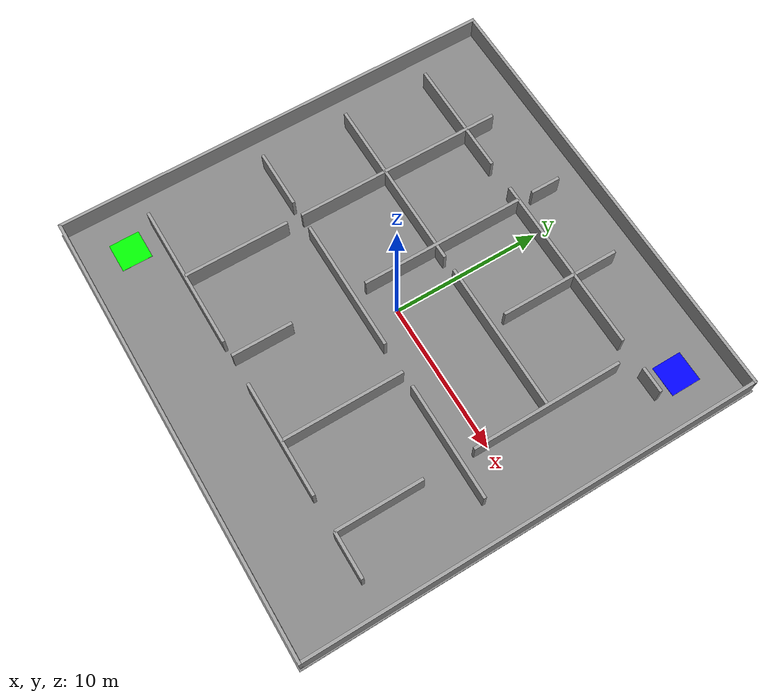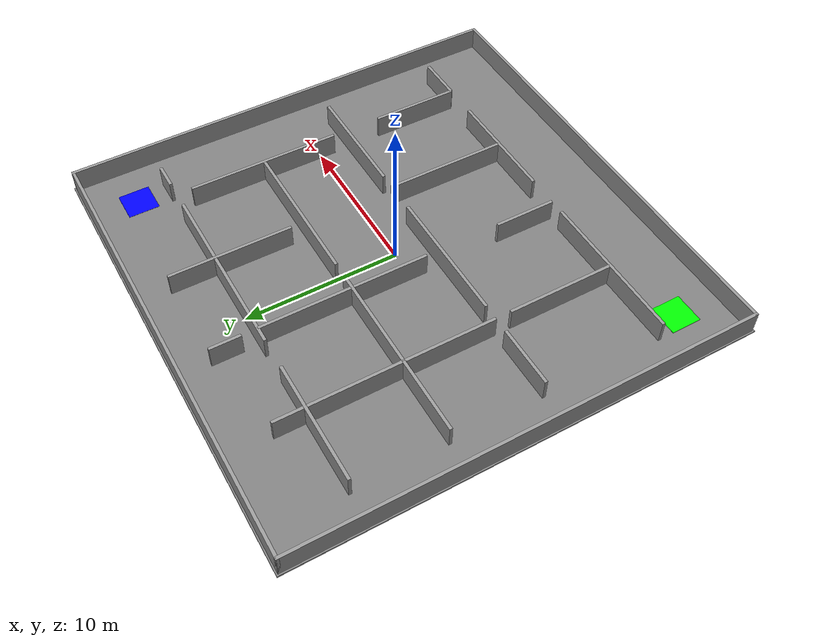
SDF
<?xml version="1.0" ?>
<sdf version="1.6">
  <world name="sw01_maze">
    <!-- 设计规范固定的物理与环境光：重力为 (0,0,-9.8)，ambient=(0.8,0.8,0.8,1) 让封闭迷宫不依赖联网纹理也清晰可见。 -->
    <gravity>0 0 -9.8</gravity>
    <scene><ambient>0.8 0.8 0.8 1</ambient></scene>
    <!-- directional sun 位于 (0,0,10)、方向为 (-0.5,0.1,-0.9) 提供整体照明；point light 位于 (0,0,12)、range=40，消除迷宫内部暗角。 -->
    <light name="sun" type="directional"><pose>0 0 10 0 0 0</pose><cast_shadows>true</cast_shadows><diffuse>0.8 0.8 0.8 1</diffuse><specular>0.2 0.2 0.2 1</specular><direction>-0.5 0.1 -0.9</direction></light>
    <light name="maze_point_light" type="point"><pose>0 0 12 0 0 0</pose><cast_shadows>false</cast_shadows><diffuse>0.6 0.6 0.6 1</diffuse><specular>0.1 0.1 0.1 1</specular><attenuation><range>40</range><constant>0.7</constant><linear>0.01</linear><quadratic>0.001</quadratic></attenuation></light>

    <!-- 30.4 m 的 concrete ground 覆盖 30 m 可用区；厚 0.1 m、中心 z=-0.05，使顶面恰好是 z=0。 -->
    <model name="ground"><static>true</static><pose>0 0 -0.05 0 0 0</pose><link name="link"><collision name="collision"><geometry><box><size>30.4 30.4 0.1</size></box></geometry></collision><visual name="visual"><geometry><box><size>30.4 30.4 0.1</size></box></geometry><material><script><uri>file://media/materials/scripts/gazebo.material</uri><name>Gazebo/Concrete</name></script><diffuse>0.5 0.5 0.5 1</diffuse></material></visual></link></model>

    <!-- 边界墙围住 [-15,15] m；所有墙厚 0.2 m、高 1.5 m，故墙体中心统一置于 z=0.75 m。 -->
    <model name="wall_b_n"><static>true</static><pose>0 15 0.75 0 0 0</pose><link name="link"><collision name="collision"><geometry><box><size>30.2 0.2 1.5</size></box></geometry></collision><visual name="visual"><geometry><box><size>30.2 0.2 1.5</size></box></geometry><material><script><uri>file://media/materials/scripts/gazebo.material</uri><name>Gazebo/Grey</name></script><diffuse>0.55 0.55 0.55 1</diffuse></material></visual></link></model>
    <model name="wall_b_s"><static>true</static><pose>0 -15 0.75 0 0 0</pose><link name="link"><collision name="collision"><geometry><box><size>30.2 0.2 1.5</size></box></geometry></collision><visual name="visual"><geometry><box><size>30.2 0.2 1.5</size></box></geometry><material><script><uri>file://media/materials/scripts/gazebo.material</uri><name>Gazebo/Grey</name></script><diffuse>0.55 0.55 0.55 1</diffuse></material></visual></link></model>
    <model name="wall_b_e"><static>true</static><pose>15 0 0.75 0 0 0</pose><link name="link"><collision name="collision"><geometry><box><size>0.2 30.2 1.5</size></box></geometry></collision><visual name="visual"><geometry><box><size>0.2 30.2 1.5</size></box></geometry><material><script><uri>file://media/materials/scripts/gazebo.material</uri><name>Gazebo/Grey</name></script><diffuse>0.55 0.55 0.55 1</diffuse></material></visual></link></model>
    <model name="wall_b_w"><static>true</static><pose>-15 0 0.75 0 0 0</pose><link name="link"><collision name="collision"><geometry><box><size>0.2 30.2 1.5</size></box></geometry></collision><visual name="visual"><geometry><box><size>0.2 30.2 1.5</size></box></geometry><material><script><uri>file://media/materials/scripts/gazebo.material</uri><name>Gazebo/Grey</name></script><diffuse>0.55 0.55 0.55 1</diffuse></material></visual></link></model>

    <model name="wall_h01"><static>true</static><pose>-8 -10 0.75 0 0 0</pose><link name="link"><collision name="collision"><geometry><box><size>10 0.2 1.5</size></box></geometry></collision><visual name="visual"><geometry><box><size>10 0.2 1.5</size></box></geometry><material><script><uri>file://media/materials/scripts/gazebo.material</uri><name>Gazebo/Grey</name></script><diffuse>0.55 0.55 0.55 1</diffuse></material></visual></link></model>
<model name="wall_h02"><static>true</static><pose>3.85 -10 0.75 0 0 0</pose><link name="link"><collision name="collision"><geometry><box><size>7.7 0.2 1.5</size></box></geometry></collision><visual name="visual"><geometry><box><size>7.7 0.2 1.5</size></box></geometry><material><script><uri>file://media/materials/scripts/gazebo.material</uri><name>Gazebo/Grey</name></script><diffuse>0.55 0.55 0.55 1</diffuse></material></visual></link></model>
<model name="wall_h03"><static>true</static><pose>11.5 -10 0.75 0 0 0</pose><link name="link"><collision name="collision"><geometry><box><size>3 0.2 1.5</size></box></geometry></collision><visual name="visual"><geometry><box><size>3 0.2 1.5</size></box></geometry><material><script><uri>file://media/materials/scripts/gazebo.material</uri><name>Gazebo/Grey</name></script><diffuse>0.55 0.55 0.55 1</diffuse></material></visual></link></model>
<model name="wall_v01"><static>true</static><pose>-8 -6.5 0.75 0 0 0</pose><link name="link"><collision name="collision"><geometry><box><size>0.2 7 1.5</size></box></geometry></collision><visual name="visual"><geometry><box><size>0.2 7 1.5</size></box></geometry><material><script><uri>file://media/materials/scripts/gazebo.material</uri><name>Gazebo/Grey</name></script><diffuse>0.55 0.55 0.55 1</diffuse></material></visual></link></model>
<model name="wall_v02"><static>true</static><pose>-8 5 0.75 0 0 0</pose><link name="link"><collision name="collision"><geometry><box><size>0.2 14 1.5</size></box></geometry></collision><visual name="visual"><geometry><box><size>0.2 14 1.5</size></box></geometry><material><script><uri>file://media/materials/scripts/gazebo.material</uri><name>Gazebo/Grey</name></script><diffuse>0.55 0.55 0.55 1</diffuse></material></visual></link></model>
<model name="wall_h04"><static>true</static><pose>-11 -2 0.75 0 0 0</pose><link name="link"><collision name="collision"><geometry><box><size>4 0.2 1.5</size></box></geometry></collision><visual name="visual"><geometry><box><size>4 0.2 1.5</size></box></geometry><material><script><uri>file://media/materials/scripts/gazebo.material</uri><name>Gazebo/Grey</name></script><diffuse>0.55 0.55 0.55 1</diffuse></material></visual></link></model>
<model name="wall_h05"><static>true</static><pose>-2.5 -2 0.75 0 0 0</pose><link name="link"><collision name="collision"><geometry><box><size>9 0.2 1.5</size></box></geometry></collision><visual name="visual"><geometry><box><size>9 0.2 1.5</size></box></geometry><material><script><uri>file://media/materials/scripts/gazebo.material</uri><name>Gazebo/Grey</name></script><diffuse>0.55 0.55 0.55 1</diffuse></material></visual></link></model>
<model name="wall_h06"><static>true</static><pose>8.85 -2 0.75 0 0 0</pose><link name="link"><collision name="collision"><geometry><box><size>7.7 0.2 1.5</size></box></geometry></collision><visual name="visual"><geometry><box><size>7.7 0.2 1.5</size></box></geometry><material><script><uri>file://media/materials/scripts/gazebo.material</uri><name>Gazebo/Grey</name></script><diffuse>0.55 0.55 0.55 1</diffuse></material></visual></link></model>
<model name="wall_v03"><static>true</static><pose>-2 -8 0.75 0 0 0</pose><link name="link"><collision name="collision"><geometry><box><size>0.2 4 1.5</size></box></geometry></collision><visual name="visual"><geometry><box><size>0.2 4 1.5</size></box></geometry><material><script><uri>file://media/materials/scripts/gazebo.material</uri><name>Gazebo/Grey</name></script><diffuse>0.55 0.55 0.55 1</diffuse></material></visual></link></model>
<model name="wall_v04"><static>true</static><pose>-2 4.5 0.75 0 0 0</pose><link name="link"><collision name="collision"><geometry><box><size>0.2 11 1.5</size></box></geometry></collision><visual name="visual"><geometry><box><size>0.2 11 1.5</size></box></geometry><material><script><uri>file://media/materials/scripts/gazebo.material</uri><name>Gazebo/Grey</name></script><diffuse>0.55 0.55 0.55 1</diffuse></material></visual></link></model>
<model name="wall_v05"><static>true</static><pose>-2 12 0.75 0 0 0</pose><link name="link"><collision name="collision"><geometry><box><size>0.2 2 1.5</size></box></geometry></collision><visual name="visual"><geometry><box><size>0.2 2 1.5</size></box></geometry><material><script><uri>file://media/materials/scripts/gazebo.material</uri><name>Gazebo/Grey</name></script><diffuse>0.55 0.55 0.55 1</diffuse></material></visual></link></model>
<model name="wall_h07"><static>true</static><pose>-7 4 0.75 0 0 0</pose><link name="link"><collision name="collision"><geometry><box><size>12 0.2 1.5</size></box></geometry></collision><visual name="visual"><geometry><box><size>12 0.2 1.5</size></box></geometry><material><script><uri>file://media/materials/scripts/gazebo.material</uri><name>Gazebo/Grey</name></script><diffuse>0.55 0.55 0.55 1</diffuse></material></visual></link></model>
<model name="wall_h08"><static>true</static><pose>5 4 0.75 0 0 0</pose><link name="link"><collision name="collision"><geometry><box><size>10 0.2 1.5</size></box></geometry></collision><visual name="visual"><geometry><box><size>10 0.2 1.5</size></box></geometry><material><script><uri>file://media/materials/scripts/gazebo.material</uri><name>Gazebo/Grey</name></script><diffuse>0.55 0.55 0.55 1</diffuse></material></visual></link></model>
<model name="wall_v06"><static>true</static><pose>4 -6 0.75 0 0 0</pose><link name="link"><collision name="collision"><geometry><box><size>0.2 8 1.5</size></box></geometry></collision><visual name="visual"><geometry><box><size>0.2 8 1.5</size></box></geometry><material><script><uri>file://media/materials/scripts/gazebo.material</uri><name>Gazebo/Grey</name></script><diffuse>0.55 0.55 0.55 1</diffuse></material></visual></link></model>
<model name="wall_v07"><static>true</static><pose>4 9 0.75 0 0 0</pose><link name="link"><collision name="collision"><geometry><box><size>0.2 8 1.5</size></box></geometry></collision><visual name="visual"><geometry><box><size>0.2 8 1.5</size></box></geometry><material><script><uri>file://media/materials/scripts/gazebo.material</uri><name>Gazebo/Grey</name></script><diffuse>0.55 0.55 0.55 1</diffuse></material></visual></link></model>
<model name="wall_h09"><static>true</static><pose>-9 10 0.75 0 0 0</pose><link name="link"><collision name="collision"><geometry><box><size>8 0.2 1.5</size></box></geometry></collision><visual name="visual"><geometry><box><size>8 0.2 1.5</size></box></geometry><material><script><uri>file://media/materials/scripts/gazebo.material</uri><name>Gazebo/Grey</name></script><diffuse>0.55 0.55 0.55 1</diffuse></material></visual></link></model>
<model name="wall_h10"><static>true</static><pose>3 10 0.75 0 0 0</pose><link name="link"><collision name="collision"><geometry><box><size>12 0.2 1.5</size></box></geometry></collision><visual name="visual"><geometry><box><size>12 0.2 1.5</size></box></geometry><material><script><uri>file://media/materials/scripts/gazebo.material</uri><name>Gazebo/Grey</name></script><diffuse>0.55 0.55 0.55 1</diffuse></material></visual></link></model>
<model name="wall_h11"><static>true</static><pose>11.85 10 0.75 0 0 0</pose><link name="link"><collision name="collision"><geometry><box><size>1.7 0.2 1.5</size></box></geometry></collision><visual name="visual"><geometry><box><size>1.7 0.2 1.5</size></box></geometry><material><script><uri>file://media/materials/scripts/gazebo.material</uri><name>Gazebo/Grey</name></script><diffuse>0.55 0.55 0.55 1</diffuse></material></visual></link></model>
<model name="wall_v08"><static>true</static><pose>10 -7.15 0.75 0 0 0</pose><link name="link"><collision name="collision"><geometry><box><size>0.2 5.7 1.5</size></box></geometry></collision><visual name="visual"><geometry><box><size>0.2 5.7 1.5</size></box></geometry><material><script><uri>file://media/materials/scripts/gazebo.material</uri><name>Gazebo/Grey</name></script><diffuse>0.55 0.55 0.55 1</diffuse></material></visual></link></model>
<model name="wall_v09"><static>true</static><pose>10 4 0.75 0 0 0</pose><link name="link"><collision name="collision"><geometry><box><size>0.2 10 1.5</size></box></geometry></collision><visual name="visual"><geometry><box><size>0.2 10 1.5</size></box></geometry><material><script><uri>file://media/materials/scripts/gazebo.material</uri><name>Gazebo/Grey</name></script><diffuse>0.55 0.55 0.55 1</diffuse></material></visual></link></model>

    <!-- 起点 (-12,-12) 用 2 m 绿色薄板标出；终点 (12,12) 用同尺寸蓝色薄板标出，z=0.006 避免与地面 z-fighting。 -->
    <model name="start_zone"><static>true</static><pose>-12 -12 0.006 0 0 0</pose><link name="link"><collision name="collision"><geometry><box><size>2 2 0.01</size></box></geometry></collision><visual name="visual"><geometry><box><size>2 2 0.01</size></box></geometry><material><diffuse>0 1 0 1</diffuse></material></visual></link></model>
    <model name="goal_zone"><static>true</static><pose>12 12 0.006 0 0 0</pose><link name="link"><collision name="collision"><geometry><box><size>2 2 0.01</size></box></geometry></collision><visual name="visual"><geometry><box><size>2 2 0.01</size></box></geometry><material><diffuse>0 0 1 1</diffuse></material></visual></link></model>
  </world>
</sdf>
